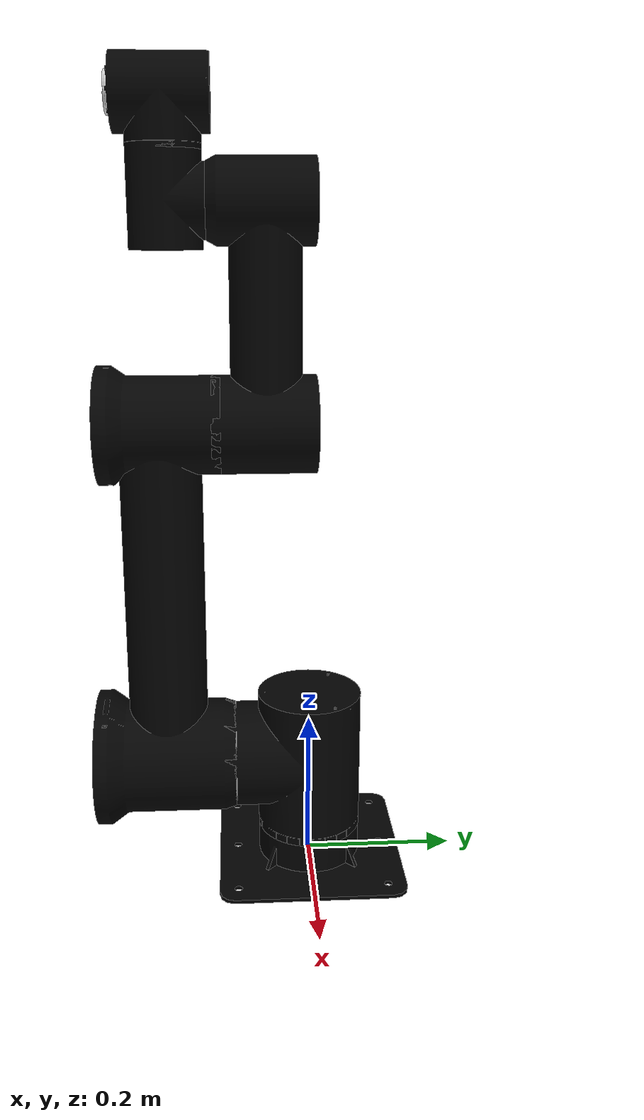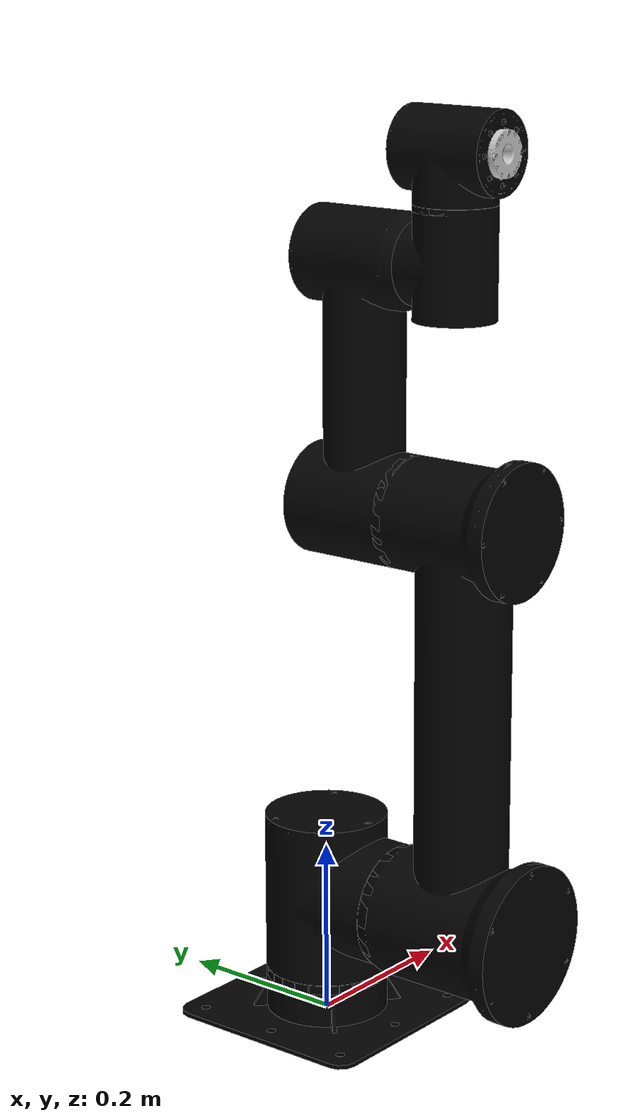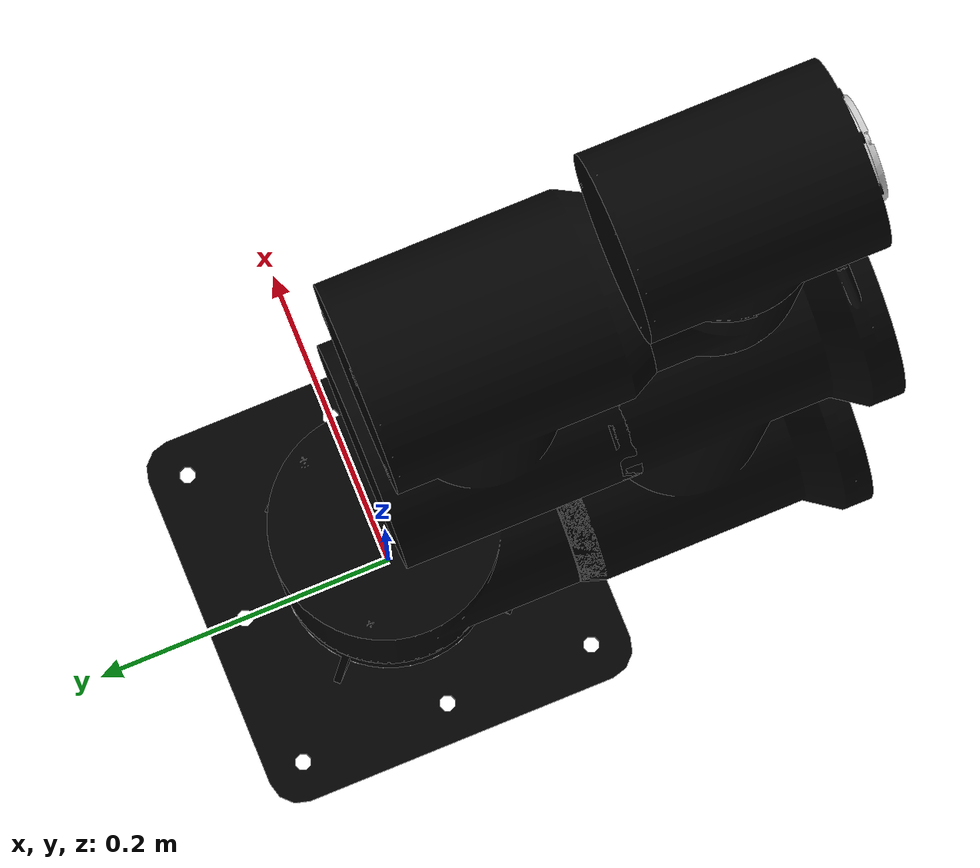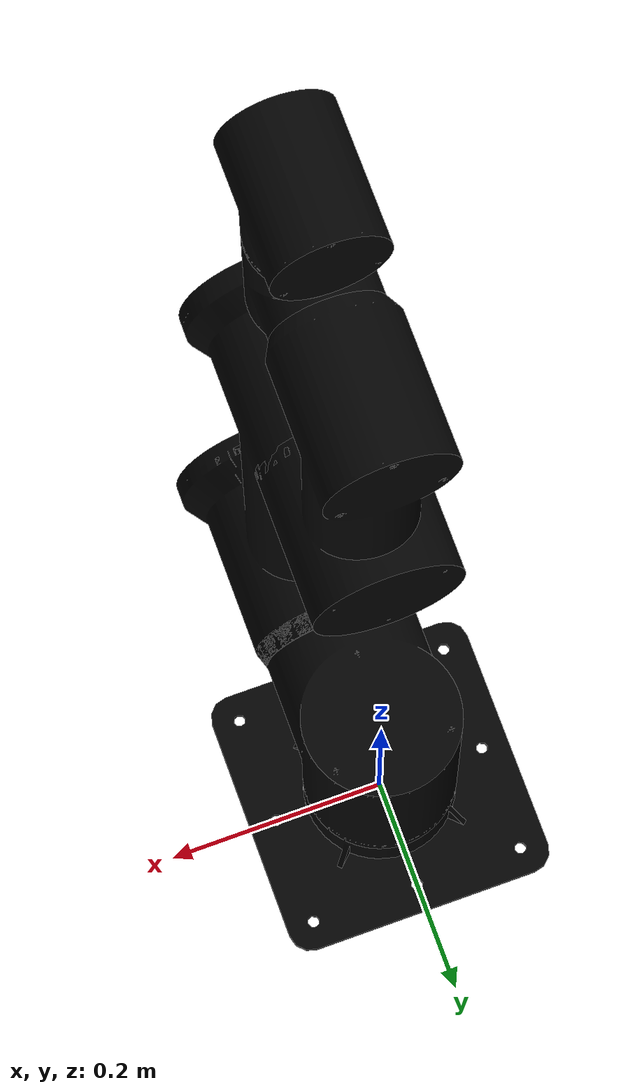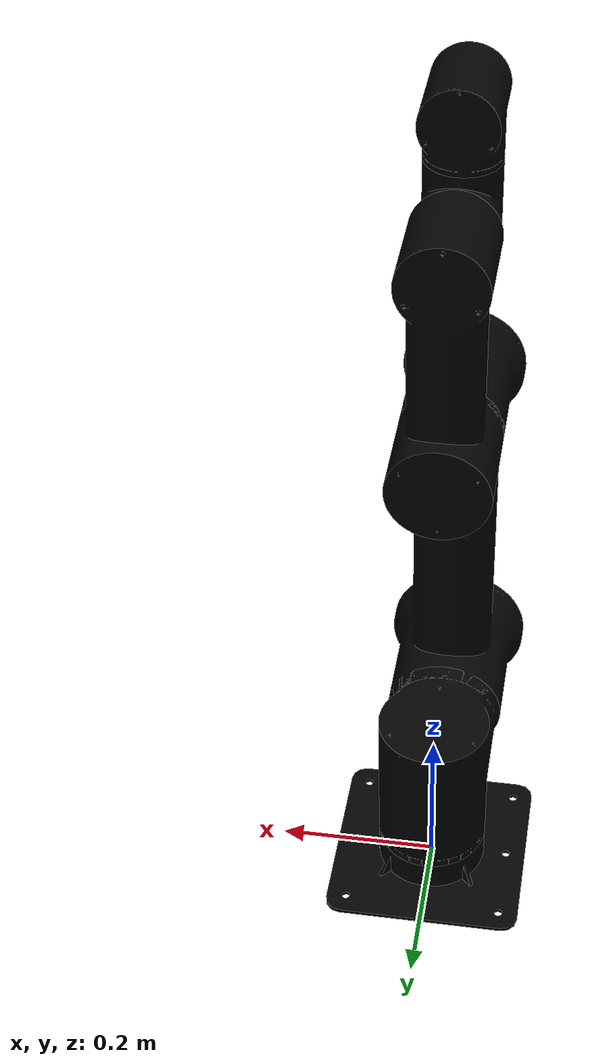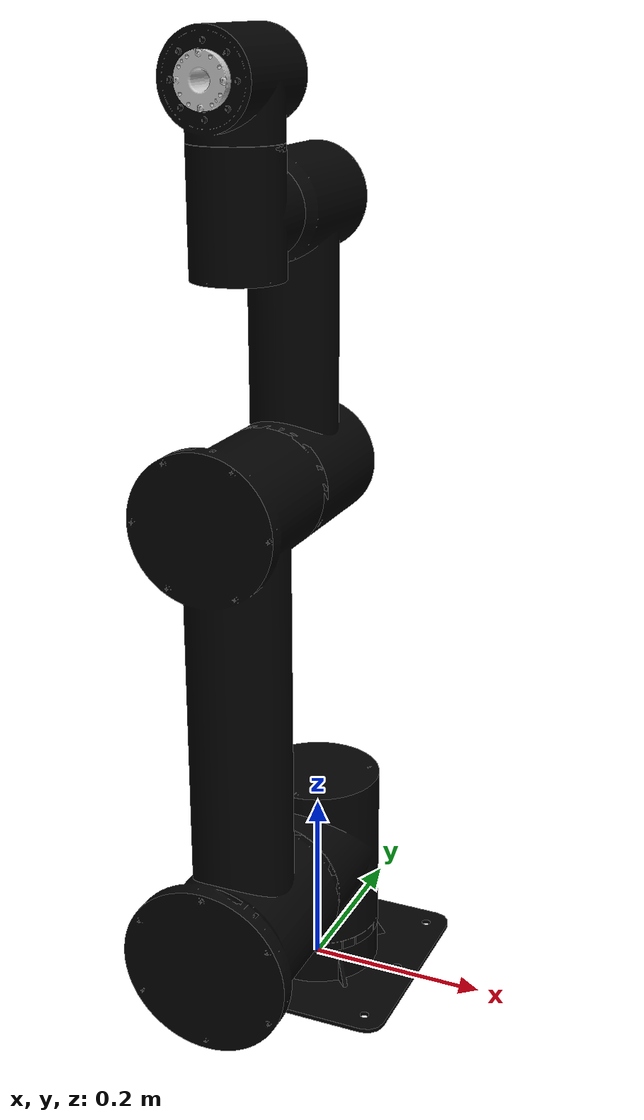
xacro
<?xml version="1.0"?>
<robot name="mcx_robot" xmlns:xacro="http://ros.org/wiki/xacro">
  <xacro:arg name="robot_ip" default="192.168.2.100"/>
  <xacro:include filename="$(find manipulator_description)/resource/urdf/pr15.urdf"/>
  <xacro:include filename="mcx.ros2_control.xacro"/>
  <xacro:mcx_ros2_control robot_ip="$(arg robot_ip)"/>

</robot>

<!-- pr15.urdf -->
<!-- created with Phobos 1.0.1 "Capricious Choutengan" -->
  <robot name="pr15">

    <link name="world"/>
    <joint name="world_fixed" type="fixed">
      <origin xyz="0.0 0.0 0.0" rpy="0 0 0"/>
      <parent link="world"/>
      <child link="pr15_base_link"/>
    </joint>

    <link name="pr15_base_link">
      <inertial>
        <origin xyz="0 0 0" rpy="0 0 0"/>
        <mass value="4.021"/>
        <inertia ixx="0.01299" ixy="0" ixz="0" iyy="0.01299" iyz="0" izz="0.02208"/>
      </inertial>
      <visual name="base_link">
        <origin xyz="0 0 0" rpy="0 0 0"/>
        <geometry>
          <mesh filename="package://manipulator_description/resource/meshes/visual/base_link.dae" scale="1.0 1.0 1.0"/>
        </geometry>
      </visual>
      <collision name="base_link">
        <origin xyz="0 0 0.02559" rpy="0 0 0"/>
        <geometry>
          <mesh filename="package://manipulator_description/resource/meshes/collision/base_link_collision.stl" scale="1.0 1.0 1.0"/>
        </geometry>
      </collision>
    </link>

    <link name="pr15_forearm_link">
      <inertial>
        <origin xyz="0 0 0" rpy="0 0 0"/>
        <mass value="2.311"/>
        <inertia ixx="0.03241" ixy="0" ixz="0" iyy="0.03123" iyz="0" izz="0.00438"/>
      </inertial>
      <visual name="forearm_link">
        <origin xyz="0 0 0" rpy="1.5708 0 0"/>
        <geometry>
          <mesh filename="package://manipulator_description/resource/meshes/visual/forearm_link.dae" scale="1.0 1.0 1.0"/>
        </geometry>
      </visual>
      <collision name="forearm_link">
        <origin xyz="0 0 0.0401" rpy="3.14159 0 0"/>
        <geometry>
          <mesh filename="package://manipulator_description/resource/meshes/collision/forearm_link_collision.stl" scale="1.0 1.0 1.0"/>
        </geometry>
      </collision>
    </link>

    <link name="pr15_shoulder_link">
      <inertial>
        <origin xyz="0 0 0" rpy="0 0 0"/>
        <mass value="3.661"/>
        <inertia ixx="0.01843" ixy="0" ixz="0" iyy="0.01419" iyz="0" izz="0.01341"/>
      </inertial>
      <visual name="shoulder_link">
        <origin xyz="0 0 0" rpy="0 0 0"/>
        <geometry>
          <mesh filename="package://manipulator_description/resource/meshes/visual/shoulder_link.dae" scale="1.0 1.0 1.0"/>
        </geometry>
      </visual>
      <collision name="shoulder_link">
        <origin xyz="0 -0.06036 0" rpy="1.5708 0 0"/>
        <geometry>
          <mesh filename="package://manipulator_description/resource/meshes/collision/shoulder_link_collision.stl" scale="1.0 1.0 1.0"/>
        </geometry>
      </collision>
    </link>

    <link name="pr15_upperarm_link">
      <inertial>
        <origin xyz="0 0 0" rpy="0 0 0"/>
        <mass value="8.341"/>
        <inertia ixx="0.30658" ixy="0" ixz="0" iyy="0.2933" iyz="0" izz="0.03147"/>
      </inertial>
      <visual name="upperarm_link">
        <origin xyz="0 0 0" rpy="1.5708 0 0"/>
        <geometry>
          <mesh filename="package://manipulator_description/resource/meshes/visual/upperarm_link.dae" scale="1.0 1.0 1.0"/>
        </geometry>
      </visual>
      <collision name="upperarm_link">
        <origin xyz="0 0 -0.09325" rpy="3.14159 0 0"/>
        <geometry>
          <mesh filename="package://manipulator_description/resource/meshes/collision/upperarm_link_collision.stl" scale="1.0 1.0 1.0"/>
        </geometry>
      </collision>
    </link>

    <link name="pr15_wrist1_link">
      <inertial>
        <origin xyz="0 0 0" rpy="0 0 0"/>
        <mass value="1.291"/>
        <inertia ixx="0.0025" ixy="0" ixz="0" iyy="0.00208" iyz="0" izz="0.00177"/>
      </inertial>
      <visual name="wrist1_link">
        <origin xyz="0 0 0" rpy="1.5708 0 0"/>
        <geometry>
          <mesh filename="package://manipulator_description/resource/meshes/visual/wrist1_link.dae" scale="1.0 1.0 1.0"/>
        </geometry>
      </visual>
      <collision name="wrist1_link">
        <origin xyz="0 -0.00465 -0.055" rpy="1.5708 0 0"/>
        <geometry>
          <mesh filename="package://manipulator_description/resource/meshes/collision/wrist1_link_collision.stl" scale="1.0 1.0 1.0"/>
        </geometry>
      </collision>
    </link>

    <link name="pr15_wrist2_link">
      <inertial>
        <origin xyz="0 0 0" rpy="0 0 0"/>
        <mass value="1.291"/>
        <inertia ixx="0.0025" ixy="0" ixz="0" iyy="0.00208" iyz="0" izz="0.00177"/>
      </inertial>
      <visual name="wrist2_link">
        <origin xyz="0 0 0" rpy="0 0 0"/>
        <geometry>
          <mesh filename="package://manipulator_description/resource/meshes/visual/wrist2_link.dae" scale="1.0 1.0 1.0"/>
        </geometry>
      </visual>
      <collision name="wrist2_link">
        <origin xyz="0 -0.00307 0.055" rpy="1.5708 0 0"/>
        <geometry>
          <mesh filename="package://manipulator_description/resource/meshes/collision/wrist2_link_collision.stl" scale="1.0 1.0 1.0"/>
        </geometry>
      </collision>
    </link>

    <link name="pr15_wrist3_link">
      <inertial>
        <origin xyz="0 0 0" rpy="0 0 0"/>
        <mass value="0.001"/>
        <inertia ixx="0.001" ixy="0" ixz="0" iyy="0.001" iyz="0" izz="0.001"/>
      </inertial>
    </link>

    <joint name="pr15_elbow_joint" type="revolute">
      <origin xyz="0 -0.46 0" rpy="0 0 0"/>
      <parent link="pr15_upperarm_link"/>
      <child link="pr15_forearm_link"/>
      <axis xyz="0 0 1.0"/>
      <limit lower="-3.14" upper="3.14" effort="0" velocity="0"/>
    </joint>

    <joint name="pr15_shoulder_pan_joint" type="revolute">
      <origin xyz="0 0 0.151" rpy="0 0 0"/>
      <parent link="pr15_base_link"/>
      <child link="pr15_shoulder_link"/>
      <axis xyz="0 0 1.0"/>
      <limit lower="-3.14" upper="3.14" effort="0" velocity="0"/>
    </joint>

    <joint name="pr15_shoulder_lift_joint" type="revolute">
      <origin xyz="0 -0.1 0" rpy="-1.5708 0 0"/>
      <parent link="pr15_shoulder_link"/>
      <child link="pr15_upperarm_link"/>
      <axis xyz="0 0 1.0"/>
      <limit lower="-3.14" upper="3.14" effort="0" velocity="0"/>
    </joint>

    <joint name="pr15_wrist1_joint" type="revolute">
      <origin xyz="0 -0.27 -0.0205" rpy="0 0 0"/>
      <parent link="pr15_forearm_link"/>
      <child link="pr15_wrist1_link"/>
      <axis xyz="0 0 1.0"/>
      <limit lower="-3.14" upper="3.14" effort="0" velocity="0"/>
    </joint>

    <joint name="pr15_wrist2_joint" type="revolute">
      <origin xyz="0 -0.065 -0.055" rpy="1.5708 0 0"/>
      <parent link="pr15_wrist1_link"/>
      <child link="pr15_wrist2_link"/>
      <axis xyz="0 0 1.0"/>
      <limit lower="-3.14" upper="3.14" effort="0" velocity="0"/>
    </joint>

    <joint name="pr15_wrist3_joint" type="revolute">
      <origin xyz="0 -0.065 0.055" rpy="-1.5708 0 0"/>
      <parent link="pr15_wrist2_link"/>
      <child link="pr15_wrist3_link"/>
      <axis xyz="0 0 1.0"/>
      <limit lower="-3.14" upper="3.14" effort="0" velocity="0"/>
    </joint>

  </robot>
